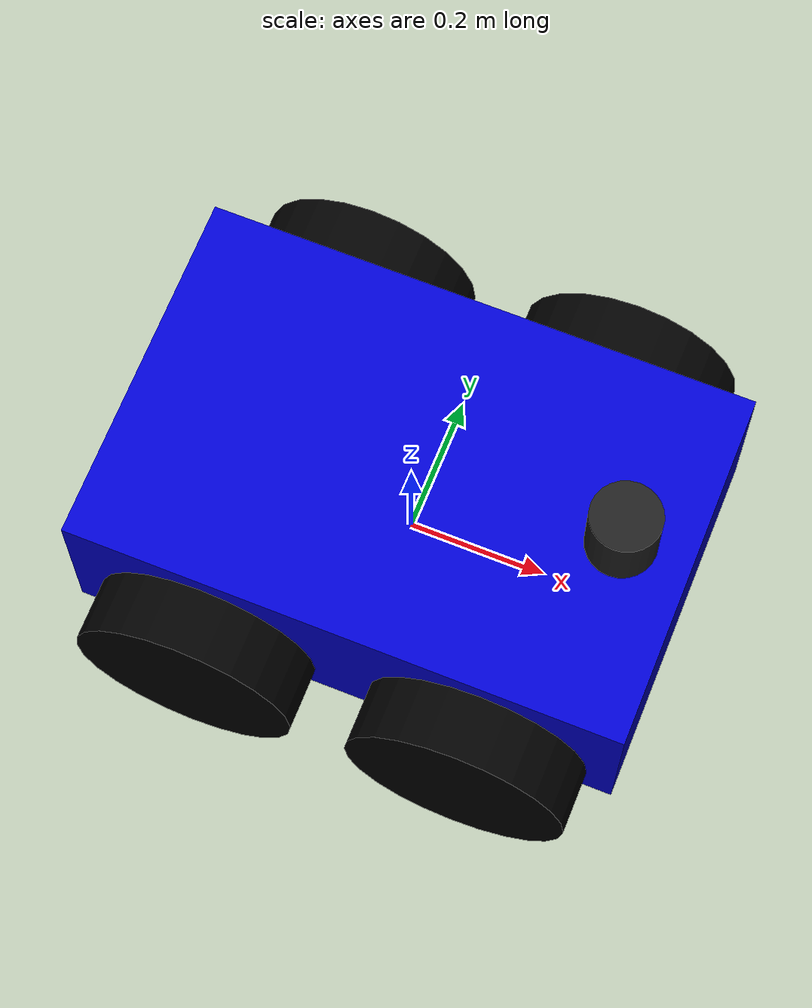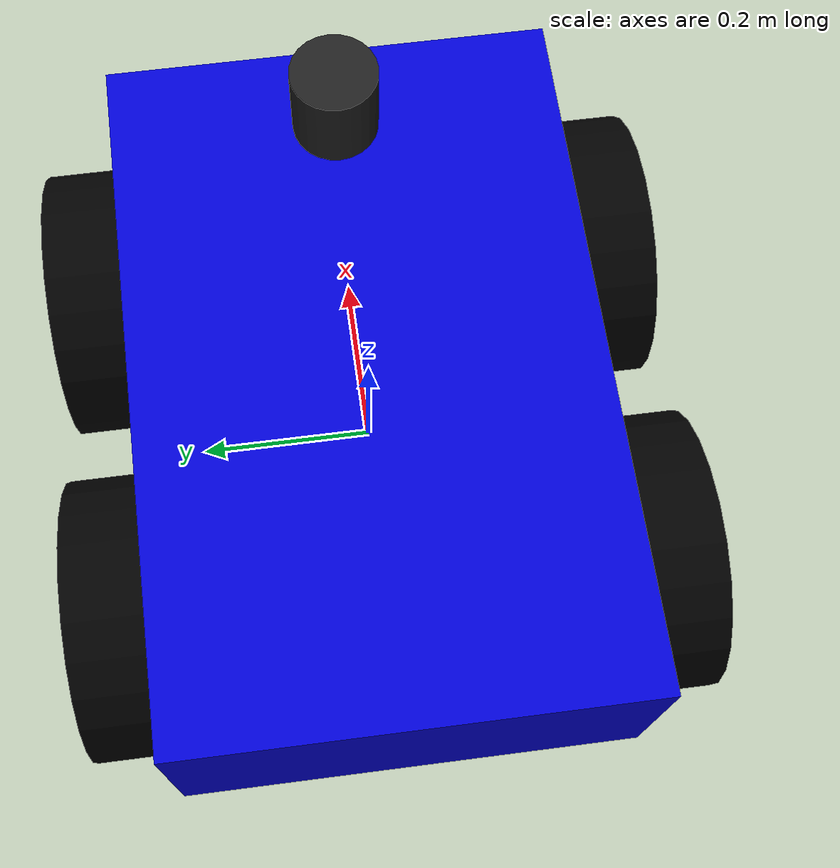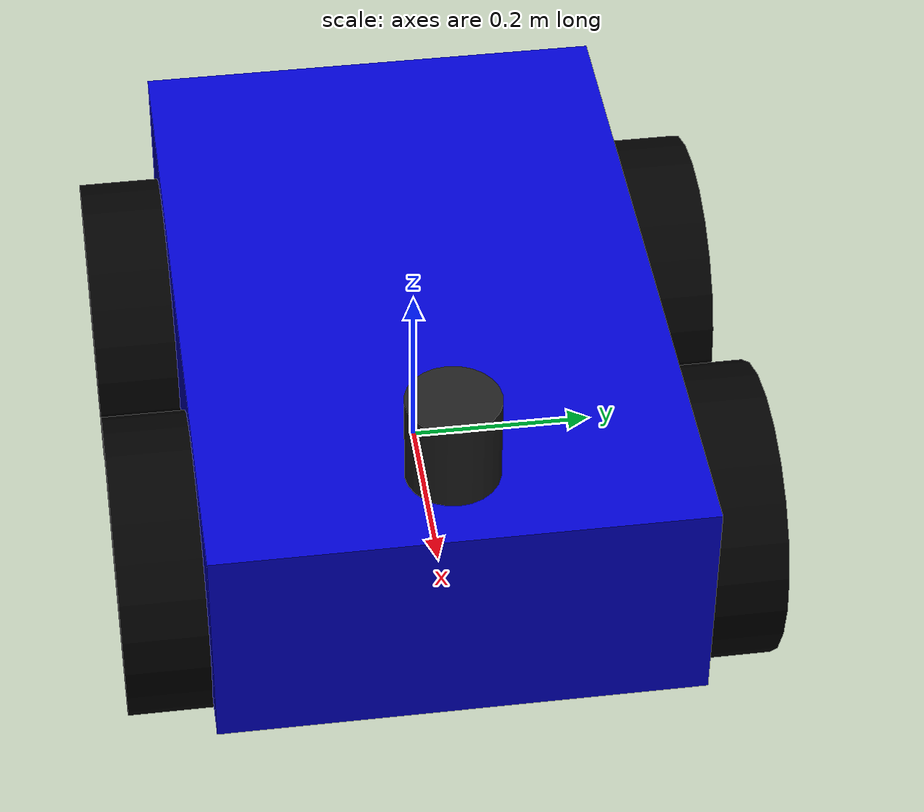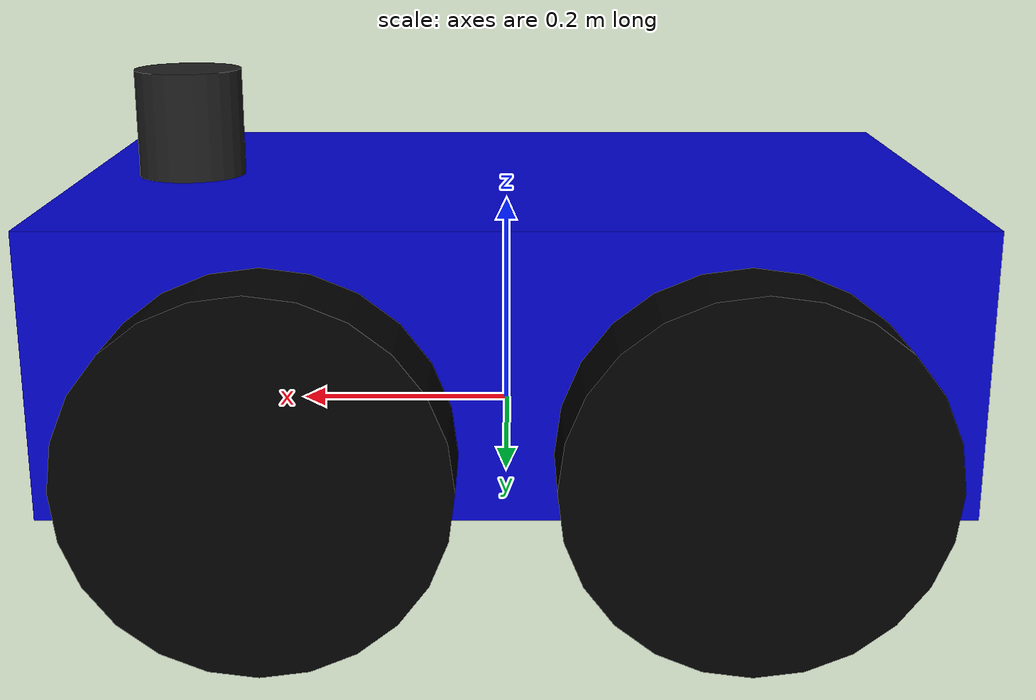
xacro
<?xml version="1.0"?>
<robot name="gribot" xmlns:xacro="http://www.ros.org/wiki/xacro">

   <xacro:include filename="$(find gribot)/rviz/urdf/wheel.urdf.xacro" />

   <!-- Defining the colors used in this robot -->

   <material name="Black">
      <color rgba="0.0 0.0 0.0 1.0"/>
   </material>

   <material name="Red">
      <color rgba="0.8 0.0 0.0 1.0"/>
   </material>

   <material name="White">
      <color rgba="1.0 1.0 1.0 1.0"/>
   </material>

   <material name="Blue">
      <color rgba="0.0 0.0 0.8 1.0"/>
   </material>

   <!-- Property list -->
   <!-- All units in m-kg-s-radians unit system -->

   <xacro:property name="M_PI" value="3.1415926535897931" />
   <xacro:property name="M_PI_2" value="1.570796327" />
   <xacro:property name="DEG_TO_RAD" value="0.017453293" />

   <!-- Main body length height width -->

   <xacro:property name="base_height"   value="0.25" /> <!-- in meter -->
   <xacro:property name="base_width"    value="0.52"  /> <!-- in meter -->
   <xacro:property name="base_lenght"   value="0.8"  /> <!-- in meter -->
   <xacro:property name="base_mass"     value="20.0" /> <!-- in kg -->

   <!-- Macro for calculating inertia of cylinder -->

   <xacro:macro name="cylinder_inertia" params="m r h">
      <inertia ixx="${ m * ( 3 * r*r + h*h ) / 12}" ixy="0" ixz="0"
               iyy="${ m * ( 3 * r*r + h*h ) / 12}" iyz="0"
               izz="${ m * r / 2}" />
   </xacro:macro>

   <!-- Macro for calculating inertia of a box -->

   <xacro:macro name="box_inertia" params="m x y z">
      <inertia ixx="${0.0833333 * m * (y*y + z*z)}" ixy="0.0" ixz="0.0"
               iyy="${0.0833333 * m * (x*x + z*z)}" iyz="0.0"
               izz="${0.0833333 * m * (x*x + y*y)}" />
   </xacro:macro>

   <!-- World link -->
   <!-- base_footprint is a fictious link(frame) that is on the ground right below base_link origin -->
   <!-- It is necessary as gazebo does not support inertia for the root link -->
   <!-- Do not call it world as it is reserved for robot that must be fixed to the world -->

   <link name="base_link">
   </link>

   <gazebo reference="base_link">
      <turnGravityOff>false</turnGravityOff>
   </gazebo>

   <joint name="glue_robot_to_world" type="fixed">
      <origin xyz="0 0 0.1" rpy="0 0 0" />
      <parent link="base_link" />
      <child link="chassis" />
   </joint>

   <!-- Base link -->
   <!-- Actual body/chassis of the robot -->

   <link name="chassis">
      <inertial>
         <mass value="${base_mass}" />
         <!-- the3x3 rotational inertia matrix -->
         <box_inertia m="${base_mass}" x="${base_lenght}" y="${base_width}" z="${base_height}" />
         <origin xyz="0 0 0" />
      </inertial>
      <visual>
         <origin xyz="0 0 0" rpy="0 0 0" />
         <geometry>
            <box size="${base_lenght} ${base_width} ${base_height}" />
         </geometry>
         <material name="Blue" />
      </visual>
      <collision>
         <origin xyz="0 0 0" rpy="0 0 0" />
         <geometry>
            <box size="${base_lenght} ${base_width} ${base_height}" />
         </geometry>
      </collision>
   </link>

   <gazebo reference="chassis">
      <material>Gazebo/White</material>
      <turnGravityOff>false</turnGravityOff>
   </gazebo>

   <!-- Skid Steering Drive for 4 wheel robot for simulation -->

   <gazebo>
      <plugin name="drive_controller" filename="libgazebo_ros_skid_steer_drive.so">
         <updateRate>100</updateRate>
         <robotNameSpace>/</robotNameSpace>
         <leftFrontJoint>front_left_wheel_joint</leftFrontJoint>
         <rightFrontJoint>front_right_wheel_joint</rightFrontJoint>
         <leftRearJoint>back_left_wheel_joint</leftRearJoint>
         <rightRearJoint>back_right_wheel_joint</rightRearJoint>
         <wheelSeparation>0.4</wheelSeparation>
         <wheelDiameter>0.32</wheelDiameter>
         <robotBaseFrame>base_link</robotBaseFrame>
         <torque>10</torque>
         <topicName>cmd_vel</topicName>
         <broadcastTF>true</broadcastTF>  <!-- Must be true or gmapping does not work in simulation environment -->
         <commandTopic>cmd_vel</commandTopic>
         <odometryTopic>odom</odometryTopic>
         <odometryFrame>odom</odometryFrame>
         <covariance_x>0.00100</covariance_x>
         <covariance_y>0.00100</covariance_y>
         <covariance_yaw>0.010000</covariance_yaw>
      </plugin>
   </gazebo>

   <!-- Wheel Definition for simulation -->

   <wheel fb="front" lr="right" parent="chassis" translateX="0.2" translateY="${-1*(base_width/2+0.04)}"       translateZ="-0.065" flipY="1"/>
   <wheel fb="front" lr="left"  parent="chassis" translateX="0.2" translateY="${1*(base_width/2+0.04)}"  translateZ="-0.065" flipY="1"/>
   <wheel fb="back"  lr="right" parent="chassis" translateX="-0.2" translateY="${-1*(base_width/2+0.04)}"      translateZ="-0.065" flipY="1"/>
   <wheel fb="back"  lr="left"  parent="chassis" translateX="-0.2" translateY="${1*(base_width/2+0.04)}" translateZ="-0.065" flipY="1"/>

   <!-- Lidar definition for simulation -->

   <link name="sweep_link" >
      <collision>
         <origin xyz="0 0 0" rpy="0 0 0" />
         <geometry>
            <box size="0.1 0.1 0.1" />
         </geometry>
      </collision>
      <visual>
         <origin xyz="0 0 0" rpy="0 0 0" />
         <geometry>
            <cylinder length="0.1" radius="0.05" />
         </geometry>
         <material name="black" />
      </visual>
      <inertial>
         <mass value="1e-5" />
         <origin xyz="0 0 0" rpy="0 0 0" />
         <inertia ixx="1e-6" ixy="0" ixz="0" iyy="1e-6" iyz="0" izz="1e-6" />
      </inertial>
   </link>

   <joint name="lidar_to_base" type="fixed" >
      <origin xyz="0.3 0 ${base_height/2+0.05}" rpy="0 0 0" />
      <parent link="chassis" />
      <child link="sweep_link" />
   </joint>

   <gazebo reference="sweep_link" >
      <sensor type="ray" name="laser">
         <pose>0 0 0 0 0 0</pose>
         <visualize>false</visualize>	<!-- temporary for testing, but should be put to false -->
         <update_rate>100</update_rate> <!-- rate at wich the sensor updates informations -->
         <ray>
            <scan>
               <horizontal>
                  <samples>720</samples>
                  <resolution>1</resolution>
                  <min_angle>-3.141592</min_angle>
                  <max_angle>3.141592</max_angle>
               </horizontal>
            </scan>
            <range>
               <min>0.10</min>
               <max>30.0</max>
               <resolution>0.01</resolution>
            </range>
            <noise>
               <type>gaussian</type>  <!-- Add parameters for Svcansee sweep -->
               <mean>0.0</mean>
               <stddev>0.01</stddev>
            </noise>
         </ray>
         <plugin name="sweep_link" filename="libgazebo_ros_laser.so">
            <topicName>base_scan</topicName>
            <frameName>sweep_link</frameName>
         </plugin>
      </sensor>
   </gazebo>

   <!-- Publishing joint states from Gazebo simulator -->
   <!-- fixed links are not published -->
   <!-- this is required to publish wheel status -->

   <gazebo>
      <plugin name="joint_state_publisher" filename="libgazebo_ros_joint_state_publisher.so">
         <jointName>front_left_wheel_joint, front_right_wheel_joint, back_left_wheel_joint, back_right_wheel_joint</jointName>
         <robotNameSpace>/</robotNameSpace>
         <updateRate>100</updateRate>
         <alwaysOn>true</alwaysOn>
      </plugin>
   </gazebo>

   <!-- GPS simulator -->

</robot>

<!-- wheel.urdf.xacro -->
<robot name="wheel" xmlns:xacro="http://www.ros.org/wiki/xacro">

<xacro:property name="wheel_radius" value="0.16" />
<xacro:property name="wheel_width"  value="0.1"  />
<xacro:property name="wheel_mass"   value="2.7"  />  <!-- in kg -->

   <!-- Macro for calculating inertia of cylindric wheel -->
   <xacro:macro name="wheel_inertia" params="m r h">
      <inertia ixx="${ m * ( 3 * r*r + h*h ) / 12}" ixy="0" ixz="0"
               iyy="${ m * ( 3 * r*r + h*h ) / 12}" iyz="0"
               izz="${ m * r / 2}" />
   </xacro:macro>

   <xacro:macro name="wheel" params="fb lr parent translateX translateY translateZ flipY">

   <!-- fb: front, back; lr: left right -->
      <link name="${fb}_${lr}_wheel">
         <visual>
            <origin xyz="0 0 0" rpy="${flipY*M_PI/2} 0 0"/>  <!-- make sure the wheel is in the correct position -->
            <geometry>
               <cylinder length="${wheel_width}" radius="${wheel_radius}" />
            </geometry>
            <material name="Black" />
         </visual>
         <collision>
            <origin xyz="0 0 0" rpy="${flipY*M_PI/2} 0 0"/>
            <geometry>
               <cylinder length="${wheel_width}" radius="${wheel_radius}" />
            </geometry>
         </collision>
         <inertial>
            <mass value="${wheel_mass}" />
            <origin xyz="0 0 0" />
            <wheel_inertia m="${wheel_mass}" r="${wheel_radius}" h="${wheel_width}" />
         </inertial>
      </link>

      <gazebo reference="${fb}_${lr}_wheel" >
         <mu1 value="1.0"/>
         <mu2 value="1.0" />
         <kp  value="10000000.0" />
         <kd  value="1.0" />
         <fdir1 value="1 0 0" />
         <material>Gazebo/Black</material>
         <turnGravityOff>false</turnGravityOff>
      </gazebo>

      <joint name="${fb}_${lr}_wheel_joint" type="continuous">
         <parent link="${parent}"/>
         <child link="${fb}_${lr}_wheel" />
         <origin xyz="${translateX} ${translateY} ${translateZ}" rpy="0 0 0" />
         <limit effort="1000" velocity="1000" />
         <axis xyz="0 1 0" />
         <joint_properties damping="0.0" friction="0.0" />
         <type>transmission_interface/SimpleTransmission</type>
      </joint>

      <!-- Transmission is important to link the joint and the controller -->

      <transmission name="${fb}_${lr}_wheel_joint_trans" >
         <type>transmission_interface/SimpleTransmission</type>
         <joint name="${fb}_${lr}_wheel_joint">
            <hardwareInterface>hardware_interface/EffortJointInterface</hardwareInterface>
         </joint>
         <actuator name="${fb}_${lr}_wheel_joint_motor">
            <hardwareInterface>hardware_interface/EffortJointInterface</hardwareInterface>
            <mechanicalReduction>1</mechanicalReduction> <!-- It is not true: we uses motor with gearbox and ration of 75 -->
         </actuator>
      </transmission>

   </xacro:macro>

</robot>
